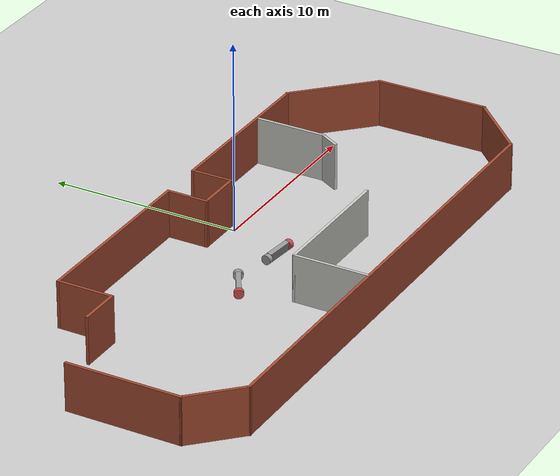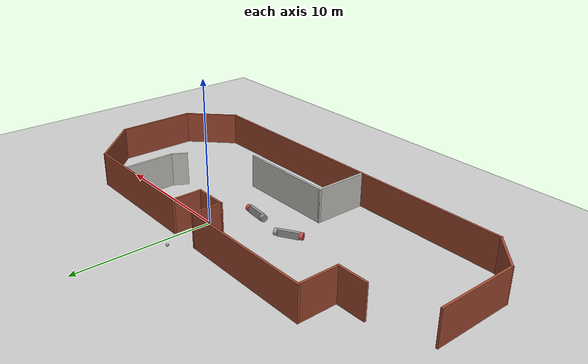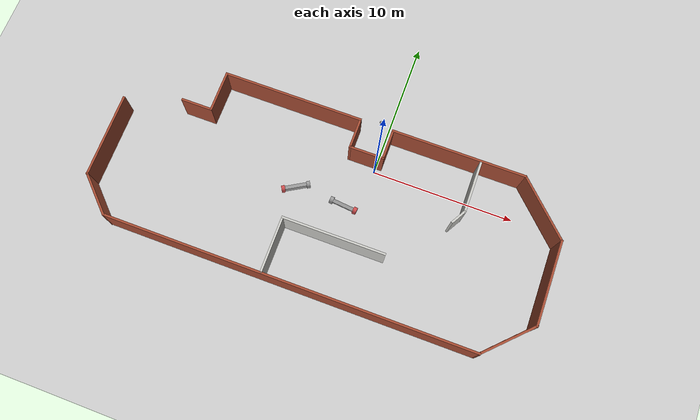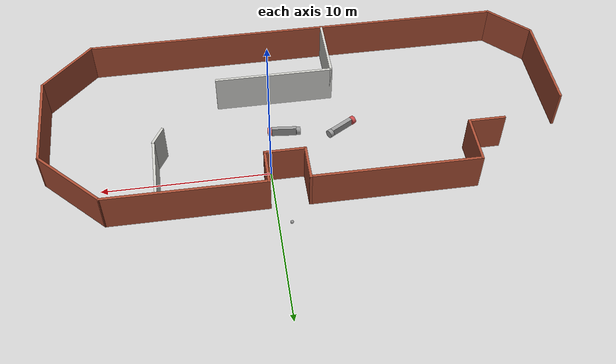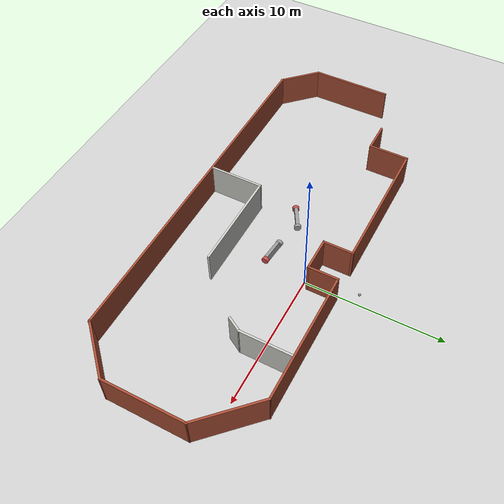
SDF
<sdf version="1.6">
 <world name="default">
  <plugin name="hello" filename="libhello.so"/>
  <light name="sun" type="directional">
   <pose>0 0 10 0 -0 0</pose>
   <diffuse>0.8 0.8 0.8 1</diffuse>
   <specular>0.2 0.2 0.2 1</specular>
   <attenuation>
    <range>1000</range>
    <constant>0.9</constant>
    <linear>0.01</linear>
    <quadratic>0.001</quadratic>
   </attenuation>
   <direction>-0.5 0.1 -0.9</direction>
  </light>
  <model name="ground_plane">
   <static>1</static>
   <link name="link">
    <collision name="collision">
     <geometry><plane><normal>0 0 1</normal><size>100 100</size></plane></geometry>
     <surface>
      <contact><collide_bitmask>65535</collide_bitmask></contact>
      <friction><ode><mu>100</mu><mu2>50</mu2></ode></friction>
     </surface>
    </collision>
    <visual name="visual">
     <cast_shadows>0</cast_shadows>
     <geometry><plane><normal>0 0 1</normal><size>100 100</size></plane></geometry>
     <material>
      <script><uri>file://media/materials/scripts/gazebo.material</uri><name>Gazebo/Grey</name></script>
     </material>
    </visual>
   </link>
  </model>
  <gravity>0 0 -9.8</gravity>
  <magnetic_field>6e-06 2.3e-05 -4.2e-05</magnetic_field>
  <atmosphere type="adiabatic"/>
  <physics name="default_physics" default="0" type="ode">
   <max_step_size>0.001</max_step_size>
   <real_time_factor>1</real_time_factor>
   <real_time_update_rate>1000</real_time_update_rate>
  </physics>
  <scene><ambient>0.4 0.4 0.4 1</ambient><background>0.7 0.7 0.7 1</background><shadows>1</shadows></scene>
  <spherical_coordinates>
   <surface_model>EARTH_WGS84</surface_model>
   <latitude_deg>0</latitude_deg>
   <longitude_deg>0</longitude_deg>
   <elevation>0</elevation>
   <heading_deg>0</heading_deg>
  </spherical_coordinates>
  <model name="robot">
   <link name="link_0">
    <pose>-3e-06 2e-06 0 0 -0 0</pose>
    <inertial>
     <mass>1</mass>
     <inertia>
      <ixx>0.166667</ixx>
      <ixy>0</ixy>
      <ixz>0</ixz>
      <iyy>0.166667</iyy>
      <iyz>0</iyz>
      <izz>0.166667</izz>
     </inertia>
    </inertial>
    <visual name="visual">
     <geometry><box><size>1.5 0.5 0.25</size></box></geometry>
     <material>
      <lighting>1</lighting>
      <script><uri>file://media/materials/scripts/gazebo.material</uri><name>Gazebo/Grey</name></script>
      <shader type="pixel"><normal_map>__default__</normal_map></shader>
      <ambient>0.3 0.3 0.3 1</ambient>
      <diffuse>0.7 0.7 0.7 1</diffuse>
      <specular>0.01 0.01 0.01 1</specular>
      <emissive>0 0 0 1</emissive>
     </material>
    </visual>
    <collision name="collision">
     <geometry><box><size>1.5 0.5 0.25</size></box></geometry>
     <surface>
      <friction>
       <ode><mu>1</mu><mu2>1</mu2><fdir1>0 0 0</fdir1><slip1>0</slip1><slip2>0</slip2></ode>
       <torsional>
        <coefficient>1</coefficient>
        <patch_radius>0</patch_radius>
        <surface_radius>0</surface_radius>
        <use_patch_radius>1</use_patch_radius>
        <ode><slip>0</slip></ode>
       </torsional>
      </friction>
      <bounce><restitution_coefficient>0</restitution_coefficient><threshold>1e+06</threshold></bounce>
      <contact>
       <collide_without_contact>0</collide_without_contact>
       <collide_without_contact_bitmask>1</collide_without_contact_bitmask>
       <collide_bitmask>1</collide_bitmask>
       <ode>
        <soft_cfm>0</soft_cfm>
        <soft_erp>0.2</soft_erp>
        <kp>1e+13</kp>
        <kd>1</kd>
        <max_vel>0.01</max_vel>
        <min_depth>0</min_depth>
       </ode>
       <bullet>
        <split_impulse>1</split_impulse>
        <split_impulse_penetration_threshold>-0.01</split_impulse_penetration_threshold>
        <soft_cfm>0</soft_cfm>
        <soft_erp>0.2</soft_erp>
        <kp>1e+13</kp>
        <kd>1</kd>
       </bullet>
      </contact>
     </surface>
    </collision>
   </link>
   <link name="link_1">
    <pose>0.87502 -0 0 0 1.57071 0</pose>
    <inertial>
     <mass>1</mass>
     <inertia><ixx>0.145833</ixx><ixy>0</ixy><ixz>0</ixz><iyy>0.145833</iyy><iyz>0</iyz><izz>0.125</izz></inertia>
    </inertial>
    <visual name="visual">
     <geometry><cylinder><radius>0.25</radius><length>0.25</length></cylinder></geometry>
     <material>
      <lighting>1</lighting>
      <script><uri>file://media/materials/scripts/gazebo.material</uri><name>Gazebo/Grey</name></script>
      <shader type="pixel"><normal_map>__default__</normal_map></shader>
      <ambient>0.8 0.3 0.3 1</ambient>
      <diffuse>0.7 0.7 0.7 1</diffuse>
      <specular>0.01 0.01 0.01 1</specular>
      <emissive>0 0 0 1</emissive>
     </material>
    </visual>
    <collision name="collision">
     <geometry><cylinder><radius>0.25</radius><length>0.25</length></cylinder></geometry>
     <surface>
      <friction>
       <ode><mu>1</mu><mu2>1</mu2><fdir1>0 0 0</fdir1><slip1>0</slip1><slip2>0</slip2></ode>
       <torsional>
        <coefficient>1</coefficient>
        <patch_radius>0</patch_radius>
        <surface_radius>0</surface_radius>
        <use_patch_radius>1</use_patch_radius>
        <ode><slip>0</slip></ode>
       </torsional>
      </friction>
      <bounce><restitution_coefficient>0</restitution_coefficient><threshold>1e+06</threshold></bounce>
      <contact>
       <collide_without_contact>0</collide_without_contact>
       <collide_without_contact_bitmask>1</collide_without_contact_bitmask>
       <collide_bitmask>1</collide_bitmask>
       <ode>
        <soft_cfm>0</soft_cfm>
        <soft_erp>0.2</soft_erp>
        <kp>1e+13</kp>
        <kd>1</kd>
        <max_vel>0.01</max_vel>
        <min_depth>0</min_depth>
       </ode>
       <bullet>
        <split_impulse>1</split_impulse>
        <split_impulse_penetration_threshold>-0.01</split_impulse_penetration_threshold>
        <soft_cfm>0</soft_cfm>
        <soft_erp>0.2</soft_erp>
        <kp>1e+13</kp>
        <kd>1</kd>
       </bullet>
      </contact>
     </surface>
    </collision>
   </link>
   <link name="link_1_clone">
    <pose>-0.875025 2e-06 0 0 1.57071 0</pose>
    <inertial>
     <mass>1</mass>
     <inertia><ixx>0.145833</ixx><ixy>0</ixy><ixz>0</ixz><iyy>0.145833</iyy><iyz>0</iyz><izz>0.125</izz></inertia>
    </inertial>
    <visual name="visual">
     <geometry><cylinder><radius>0.25</radius><length>0.25</length></cylinder></geometry>
     <material>
      <lighting>1</lighting>
      <script><uri>file://media/materials/scripts/gazebo.material</uri><name>Gazebo/Grey</name></script>
      <shader type="pixel"><normal_map>__default__</normal_map></shader>
      <ambient>0.3 0.3 0.3 1</ambient>
      <diffuse>0.7 0.7 0.7 1</diffuse>
      <specular>0.01 0.01 0.01 1</specular>
      <emissive>0 0 0 1</emissive>
     </material>
    </visual>
    <collision name="collision">
     <geometry><cylinder><radius>0.25</radius><length>0.25</length></cylinder></geometry>
     <surface>
      <friction>
       <ode><mu>1</mu><mu2>1</mu2><fdir1>0 0 0</fdir1><slip1>0</slip1><slip2>0</slip2></ode>
       <torsional>
        <coefficient>1</coefficient>
        <patch_radius>0</patch_radius>
        <surface_radius>0</surface_radius>
        <use_patch_radius>1</use_patch_radius>
        <ode><slip>0</slip></ode>
       </torsional>
      </friction>
      <bounce><restitution_coefficient>0</restitution_coefficient><threshold>1e+06</threshold></bounce>
      <contact>
       <collide_without_contact>0</collide_without_contact>
       <collide_without_contact_bitmask>1</collide_without_contact_bitmask>
       <collide_bitmask>1</collide_bitmask>
       <ode>
        <soft_cfm>0</soft_cfm>
        <soft_erp>0.2</soft_erp>
        <kp>1e+13</kp>
        <kd>1</kd>
        <max_vel>0.01</max_vel>
        <min_depth>0</min_depth>
       </ode>
       <bullet>
        <split_impulse>1</split_impulse>
        <split_impulse_penetration_threshold>-0.01</split_impulse_penetration_threshold>
        <soft_cfm>0</soft_cfm>
        <soft_erp>0.2</soft_erp>
        <kp>1e+13</kp>
        <kd>1</kd>
       </bullet>
      </contact>
     </surface>
    </collision>
   </link>
   <joint name="link_0_JOINT_2" type="revolute">
    <parent>link_0</parent>
    <child>link_1</child>
    <axis>
     <xyz>0 0 1</xyz>
     <use_parent_model_frame>0</use_parent_model_frame>
     <limit>
      <lower>-1.79769e+308</lower>
      <upper>1.79769e+308</upper>
      <effort>-1</effort>
      <velocity>-1</velocity>
     </limit>
     <dynamics>
      <spring_reference>0</spring_reference>
      <spring_stiffness>0</spring_stiffness>
      <damping>0</damping>
     </dynamics>
    </axis>
    <physics>
     <ode><limit><cfm>0</cfm><erp>0.2</erp></limit><suspension><cfm>0</cfm><erp>0.2</erp></suspension></ode>
    </physics>
   </joint>
   <joint name="link_0_JOINT_3" type="revolute">
    <parent>link_0</parent>
    <child>link_1_clone</child>
    <axis>
     <xyz>0 0 1</xyz>
     <use_parent_model_frame>0</use_parent_model_frame>
     <limit>
      <lower>-1.79769e+308</lower>
      <upper>1.79769e+308</upper>
      <effort>-1</effort>
      <velocity>-1</velocity>
     </limit>
     <dynamics>
      <spring_reference>0</spring_reference>
      <spring_stiffness>0</spring_stiffness>
      <damping>0</damping>
     </dynamics>
    </axis>
    <physics>
     <ode><limit><cfm>0</cfm><erp>0.2</erp></limit><suspension><cfm>0</cfm><erp>0.2</erp></suspension></ode>
    </physics>
   </joint>
   <static>0</static>
   <pose>-4.7199 -2.92587 0.249999 1.57079 -1e-06 -2.60647</pose>
  </model>
  <model name="robot_0">
   <link name="link_0">
    <pose>-3e-06 2e-06 0 0 -0 0</pose>
    <inertial>
     <mass>1</mass>
     <inertia>
      <ixx>0.166667</ixx>
      <ixy>0</ixy>
      <ixz>0</ixz>
      <iyy>0.166667</iyy>
      <iyz>0</iyz>
      <izz>0.166667</izz>
     </inertia>
    </inertial>
    <visual name="visual">
     <geometry><box><size>1.5 0.5 0.25</size></box></geometry>
     <material>
      <lighting>1</lighting>
      <script><uri>file://media/materials/scripts/gazebo.material</uri><name>Gazebo/Grey</name></script>
      <shader type="pixel"><normal_map>__default__</normal_map></shader>
      <ambient>0.3 0.3 0.3 1</ambient>
      <diffuse>0.7 0.7 0.7 1</diffuse>
      <specular>0.01 0.01 0.01 1</specular>
      <emissive>0 0 0 1</emissive>
     </material>
    </visual>
    <collision name="collision">
     <geometry><box><size>1.5 0.5 0.25</size></box></geometry>
     <surface>
      <friction>
       <ode><mu>1</mu><mu2>1</mu2><fdir1>0 0 0</fdir1><slip1>0</slip1><slip2>0</slip2></ode>
       <torsional>
        <coefficient>1</coefficient>
        <patch_radius>0</patch_radius>
        <surface_radius>0</surface_radius>
        <use_patch_radius>1</use_patch_radius>
        <ode><slip>0</slip></ode>
       </torsional>
      </friction>
      <bounce><restitution_coefficient>0</restitution_coefficient><threshold>1e+06</threshold></bounce>
      <contact>
       <collide_without_contact>0</collide_without_contact>
       <collide_without_contact_bitmask>1</collide_without_contact_bitmask>
       <collide_bitmask>1</collide_bitmask>
       <ode>
        <soft_cfm>0</soft_cfm>
        <soft_erp>0.2</soft_erp>
        <kp>1e+13</kp>
        <kd>1</kd>
        <max_vel>0.01</max_vel>
        <min_depth>0</min_depth>
       </ode>
       <bullet>
        <split_impulse>1</split_impulse>
        <split_impulse_penetration_threshold>-0.01</split_impulse_penetration_threshold>
        <soft_cfm>0</soft_cfm>
        <soft_erp>0.2</soft_erp>
        <kp>1e+13</kp>
        <kd>1</kd>
       </bullet>
      </contact>
     </surface>
    </collision>
   </link>
   <link name="link_1">
    <pose>0.87502 -0 0 0 1.57071 0</pose>
    <inertial>
     <mass>1</mass>
     <inertia><ixx>0.145833</ixx><ixy>0</ixy><ixz>0</ixz><iyy>0.145833</iyy><iyz>0</iyz><izz>0.125</izz></inertia>
    </inertial>
    <visual name="visual">
     <geometry><cylinder><radius>0.25</radius><length>0.25</length></cylinder></geometry>
     <material>
      <lighting>1</lighting>
      <script><uri>file://media/materials/scripts/gazebo.material</uri><name>Gazebo/Grey</name></script>
      <shader type="pixel"><normal_map>__default__</normal_map></shader>
      <ambient>0.8 0.3 0.3 1</ambient>
      <diffuse>0.7 0.7 0.7 1</diffuse>
      <specular>0.01 0.01 0.01 1</specular>
      <emissive>0 0 0 1</emissive>
     </material>
    </visual>
    <collision name="collision">
     <geometry><cylinder><radius>0.25</radius><length>0.25</length></cylinder></geometry>
     <surface>
      <friction>
       <ode><mu>1</mu><mu2>1</mu2><fdir1>0 0 0</fdir1><slip1>0</slip1><slip2>0</slip2></ode>
       <torsional>
        <coefficient>1</coefficient>
        <patch_radius>0</patch_radius>
        <surface_radius>0</surface_radius>
        <use_patch_radius>1</use_patch_radius>
        <ode><slip>0</slip></ode>
       </torsional>
      </friction>
      <bounce><restitution_coefficient>0</restitution_coefficient><threshold>1e+06</threshold></bounce>
      <contact>
       <collide_without_contact>0</collide_without_contact>
       <collide_without_contact_bitmask>1</collide_without_contact_bitmask>
       <collide_bitmask>1</collide_bitmask>
       <ode>
        <soft_cfm>0</soft_cfm>
        <soft_erp>0.2</soft_erp>
        <kp>1e+13</kp>
        <kd>1</kd>
        <max_vel>0.01</max_vel>
        <min_depth>0</min_depth>
       </ode>
       <bullet>
        <split_impulse>1</split_impulse>
        <split_impulse_penetration_threshold>-0.01</split_impulse_penetration_threshold>
        <soft_cfm>0</soft_cfm>
        <soft_erp>0.2</soft_erp>
        <kp>1e+13</kp>
        <kd>1</kd>
       </bullet>
      </contact>
     </surface>
    </collision>
   </link>
   <link name="link_1_clone">
    <pose>-0.875025 2e-06 0 0 1.57071 0</pose>
    <inertial>
     <mass>1</mass>
     <inertia><ixx>0.145833</ixx><ixy>0</ixy><ixz>0</ixz><iyy>0.145833</iyy><iyz>0</iyz><izz>0.125</izz></inertia>
    </inertial>
    <visual name="visual">
     <geometry><cylinder><radius>0.25</radius><length>0.25</length></cylinder></geometry>
     <material>
      <lighting>1</lighting>
      <script><uri>file://media/materials/scripts/gazebo.material</uri><name>Gazebo/Grey</name></script>
      <shader type="pixel"><normal_map>__default__</normal_map></shader>
      <ambient>0.3 0.3 0.3 1</ambient>
      <diffuse>0.7 0.7 0.7 1</diffuse>
      <specular>0.01 0.01 0.01 1</specular>
      <emissive>0 0 0 1</emissive>
     </material>
    </visual>
    <collision name="collision">
     <geometry><cylinder><radius>0.25</radius><length>0.25</length></cylinder></geometry>
     <surface>
      <friction>
       <ode><mu>1</mu><mu2>1</mu2><fdir1>0 0 0</fdir1><slip1>0</slip1><slip2>0</slip2></ode>
       <torsional>
        <coefficient>1</coefficient>
        <patch_radius>0</patch_radius>
        <surface_radius>0</surface_radius>
        <use_patch_radius>1</use_patch_radius>
        <ode><slip>0</slip></ode>
       </torsional>
      </friction>
      <bounce><restitution_coefficient>0</restitution_coefficient><threshold>1e+06</threshold></bounce>
      <contact>
       <collide_without_contact>0</collide_without_contact>
       <collide_without_contact_bitmask>1</collide_without_contact_bitmask>
       <collide_bitmask>1</collide_bitmask>
       <ode>
        <soft_cfm>0</soft_cfm>
        <soft_erp>0.2</soft_erp>
        <kp>1e+13</kp>
        <kd>1</kd>
        <max_vel>0.01</max_vel>
        <min_depth>0</min_depth>
       </ode>
       <bullet>
        <split_impulse>1</split_impulse>
        <split_impulse_penetration_threshold>-0.01</split_impulse_penetration_threshold>
        <soft_cfm>0</soft_cfm>
        <soft_erp>0.2</soft_erp>
        <kp>1e+13</kp>
        <kd>1</kd>
       </bullet>
      </contact>
     </surface>
    </collision>
   </link>
   <joint name="link_0_JOINT_2" type="revolute">
    <parent>link_0</parent>
    <child>link_1</child>
    <axis>
     <xyz>0 0 1</xyz>
     <use_parent_model_frame>0</use_parent_model_frame>
     <limit>
      <lower>-1.79769e+308</lower>
      <upper>1.79769e+308</upper>
      <effort>-1</effort>
      <velocity>-1</velocity>
     </limit>
     <dynamics>
      <spring_reference>0</spring_reference>
      <spring_stiffness>0</spring_stiffness>
      <damping>0</damping>
     </dynamics>
    </axis>
    <physics>
     <ode><limit><cfm>0</cfm><erp>0.2</erp></limit><suspension><cfm>0</cfm><erp>0.2</erp></suspension></ode>
    </physics>
   </joint>
   <joint name="link_0_JOINT_3" type="revolute">
    <parent>link_0</parent>
    <child>link_1_clone</child>
    <axis>
     <xyz>0 0 1</xyz>
     <use_parent_model_frame>0</use_parent_model_frame>
     <limit>
      <lower>-1.79769e+308</lower>
      <upper>1.79769e+308</upper>
      <effort>-1</effort>
      <velocity>-1</velocity>
     </limit>
     <dynamics>
      <spring_reference>0</spring_reference>
      <spring_stiffness>0</spring_stiffness>
      <damping>0</damping>
     </dynamics>
    </axis>
    <physics>
     <ode><limit><cfm>0</cfm><erp>0.2</erp></limit><suspension><cfm>0</cfm><erp>0.2</erp></suspension></ode>
    </physics>
   </joint>
   <static>0</static>
   <pose>-1.1766 -3.04545 0.267188 -1.40517 2e-06 -0.093972</pose>
  </model>
  <model name="building_0">
   <pose>-2.32803 -3.60871 0 0 -0 0</pose>
   <link name="Wall_10">
    <collision name="Wall_10_Collision">
     <geometry><box><size>9.5 0.15 2.5</size></box></geometry>
     <pose>0 0 1.25 0 -0 0</pose>
    </collision>
    <visual name="Wall_10_Visual">
     <pose>0 0 1.25 0 -0 0</pose>
     <geometry><box><size>9.5 0.15 2.5</size></box></geometry>
     <material>
      <script><uri>file://media/materials/scripts/gazebo.material</uri><name>Gazebo/Bricks</name></script>
      <ambient>0.996078 0.47451 0.0196078 1</ambient>
     </material>
     <meta><layer>0</layer></meta>
    </visual>
    <pose>7.36612 6.0893 0 0 -0 3.14159</pose>
   </link>
   <link name="Wall_11">
    <collision name="Wall_11_Collision">
     <geometry><box><size>2.25 0.15 2.5</size></box></geometry>
     <pose>0 0 1.25 0 -0 0</pose>
    </collision>
    <visual name="Wall_11_Visual">
     <pose>0 0 1.25 0 -0 0</pose>
     <geometry><box><size>2.25 0.15 2.5</size></box></geometry>
     <material>
      <script><uri>file://media/materials/scripts/gazebo.material</uri><name>Gazebo/Bricks</name></script>
      <ambient>0.996078 0.47451 0.0196078 1</ambient>
     </material>
     <meta><layer>0</layer></meta>
    </visual>
    <pose>2.69112 5.0393 0 0 0 -1.5708</pose>
   </link>
   <link name="Wall_12">
    <collision name="Wall_12_Collision">
     <geometry><box><size>2.5 0.15 2.5</size></box></geometry>
     <pose>0 0 1.25 0 -0 0</pose>
    </collision>
    <visual name="Wall_12_Visual">
     <pose>0 0 1.25 0 -0 0</pose>
     <geometry><box><size>2.5 0.15 2.5</size></box></geometry>
     <material>
      <script><uri>file://media/materials/scripts/gazebo.material</uri><name>Gazebo/Bricks</name></script>
      <ambient>0.996078 0.47451 0.0196078 1</ambient>
     </material>
     <meta><layer>0</layer></meta>
    </visual>
    <pose>1.51612 3.9893 0 0 -0 3.14159</pose>
   </link>
   <link name="Wall_13">
    <collision name="Wall_13_Collision">
     <geometry><box><size>2.25 0.15 2.5</size></box></geometry>
     <pose>0 0 1.25 0 -0 0</pose>
    </collision>
    <visual name="Wall_13_Visual">
     <pose>0 0 1.25 0 -0 0</pose>
     <geometry><box><size>2.25 0.15 2.5</size></box></geometry>
     <material>
      <script><uri>file://media/materials/scripts/gazebo.material</uri><name>Gazebo/Bricks</name></script>
      <ambient>1 1 1 1</ambient>
     </material>
     <meta><layer>0</layer></meta>
    </visual>
    <pose>0.341116 5.0393 0 0 -0 1.5708</pose>
   </link>
   <link name="Wall_14">
    <collision name="Wall_14_Collision">
     <geometry><box><size>10 0.15 2.5</size></box></geometry>
     <pose>0 0 1.25 0 -0 0</pose>
    </collision>
    <visual name="Wall_14_Visual">
     <pose>0 0 1.25 0 -0 0</pose>
     <geometry><box><size>10 0.15 2.5</size></box></geometry>
     <material>
      <script><uri>file://media/materials/scripts/gazebo.material</uri><name>Gazebo/Bricks</name></script>
      <ambient>0.996078 0.47451 0.0196078 1</ambient>
     </material>
     <meta><layer>0</layer></meta>
    </visual>
    <pose>-4.58388 6.0893 0 0 -0 3.14159</pose>
   </link>
   <link name="Wall_15">
    <collision name="Wall_15_Collision">
     <geometry><box><size>3 0.15 2.5</size></box></geometry>
     <pose>0 0 1.25 0 -0 0</pose>
    </collision>
    <visual name="Wall_15_Visual">
     <pose>0 0 1.25 0 -0 0</pose>
     <geometry><box><size>3 0.15 2.5</size></box></geometry>
     <material>
      <script><uri>file://media/materials/scripts/gazebo.material</uri><name>Gazebo/Bricks</name></script>
      <ambient>0.996078 0.47451 0.0196078 1</ambient>
     </material>
     <meta><layer>0</layer></meta>
    </visual>
    <pose>-9.50888 4.6643 0 0 0 -1.5708</pose>
   </link>
   <link name="Wall_16">
    <collision name="Wall_16_Collision">
     <geometry><box><size>2.25 0.15 2.5</size></box></geometry>
     <pose>0 0 1.25 0 -0 0</pose>
    </collision>
    <visual name="Wall_16_Visual">
     <pose>0 0 1.25 0 -0 0</pose>
     <geometry><box><size>2.25 0.15 2.5</size></box></geometry>
     <material>
      <script><uri>file://media/materials/scripts/gazebo.material</uri><name>Gazebo/Bricks</name></script>
      <ambient>0.996078 0.47451 0.0196078 1</ambient>
     </material>
     <meta><layer>0</layer></meta>
    </visual>
    <pose>-10.5589 3.2393 0 0 -0 3.14159</pose>
   </link>
   <link name="Wall_18">
    <collision name="Wall_18_Collision">
     <geometry><box><size>4 0.15 2.5</size></box></geometry>
     <pose>0 0 1.25 0 -0 0</pose>
    </collision>
    <visual name="Wall_18_Visual">
     <pose>0 0 1.25 0 -0 0</pose>
     <geometry><box><size>4 0.15 2.5</size></box></geometry>
     <material>
      <script><uri>file://media/materials/scripts/gazebo.material</uri><name>Gazebo/CeilingTiled</name></script>
      <ambient>0.435294 0.796078 0.67451 1</ambient>
     </material>
     <meta><layer>0</layer></meta>
    </visual>
    <pose>-2.15358 -4.09177 0 0 -0 1.5708</pose>
   </link>
   <link name="Wall_19">
    <collision name="Wall_19_Collision">
     <geometry><box><size>7.25 0.15 2.5</size></box></geometry>
     <pose>0 0 1.25 0 -0 0</pose>
    </collision>
    <visual name="Wall_19_Visual">
     <pose>0 0 1.25 0 -0 0</pose>
     <geometry><box><size>7.25 0.15 2.5</size></box></geometry>
     <material>
      <script><uri>file://media/materials/scripts/gazebo.material</uri><name>Gazebo/CeilingTiled</name></script>
      <ambient>0.435294 0.796078 0.67451 1</ambient>
     </material>
     <meta><layer>0</layer></meta>
    </visual>
    <pose>1.39641 -2.16677 0 0 -0 0</pose>
   </link>
   <link name="Wall_21">
    <collision name="Wall_21_Collision">
     <geometry><box><size>3.75 0.15 2.5</size></box></geometry>
     <pose>0 0 1.25 0 -0 0</pose>
    </collision>
    <visual name="Wall_21_Visual">
     <pose>0 0 1.25 0 -0 0</pose>
     <geometry><box><size>3.75 0.15 2.5</size></box></geometry>
     <material>
      <script><uri>file://media/materials/scripts/gazebo.material</uri><name>Gazebo/CeilingTiled</name></script>
      <ambient>0.435294 0.796078 0.67451 1</ambient>
     </material>
     <meta><layer>0</layer></meta>
    </visual>
    <pose>8.95542 4.15473 0 0 0 -1.5708</pose>
   </link>
   <link name="Wall_22">
    <collision name="Wall_22_Collision">
     <geometry><box><size>1.25 0.15 2.5</size></box></geometry>
     <pose>0 0 1.25 0 -0 0</pose>
    </collision>
    <visual name="Wall_22_Visual">
     <pose>0 0 1.25 0 -0 0</pose>
     <geometry><box><size>1.25 0.15 2.5</size></box></geometry>
     <material>
      <script><uri>file://media/materials/scripts/gazebo.material</uri><name>Gazebo/CeilingTiled</name></script>
      <ambient>0.435294 0.796078 0.67451 1</ambient>
     </material>
     <meta><layer>0</layer></meta>
    </visual>
    <pose>8.68041 1.87841 0 0 0 -2.0944</pose>
   </link>
   <link name="Wall_4">
    <collision name="Wall_4_Collision">
     <geometry><box><size>6 0.15 2.5</size></box></geometry>
     <pose>0 0 1.25 0 -0 0</pose>
    </collision>
    <visual name="Wall_4_Visual">
     <pose>0 0 1.25 0 -0 0</pose>
     <geometry><box><size>6 0.15 2.5</size></box></geometry>
     <material>
      <script><uri>file://media/materials/scripts/gazebo.material</uri><name>Gazebo/Bricks</name></script>
      <ambient>0.996078 0.47451 0.0196078 1</ambient>
     </material>
     <meta><layer>0</layer></meta>
    </visual>
    <pose>-15.4706 -0.972272 0 0 0 -1.5708</pose>
   </link>
   <link name="Wall_5">
    <collision name="Wall_5_Collision">
     <geometry><box><size>3.25 0.15 2.5</size></box></geometry>
     <pose>0 0 1.25 0 -0 0</pose>
    </collision>
    <visual name="Wall_5_Visual">
     <pose>0 0 1.25 0 -0 0</pose>
     <geometry><box><size>3.25 0.15 2.5</size></box></geometry>
     <material>
      <script><uri>file://media/materials/scripts/gazebo.material</uri><name>Gazebo/Bricks</name></script>
      <ambient>0.996078 0.47451 0.0196078 1</ambient>
     </material>
     <meta><layer>0</layer></meta>
    </visual>
    <pose>-14.3746 -4.99329 0 0 0 -0.785398</pose>
   </link>
   <link name="Wall_6">
    <collision name="Wall_6_Collision">
     <geometry><box><size>26 0.15 2.5</size></box></geometry>
     <pose>0 0 1.25 0 -0 0</pose>
    </collision>
    <visual name="Wall_6_Visual">
     <pose>0 0 1.25 0 -0 0</pose>
     <geometry><box><size>26 0.15 2.5</size></box></geometry>
     <material>
      <script><uri>file://media/materials/scripts/gazebo.material</uri><name>Gazebo/Bricks</name></script>
      <ambient>0.996078 0.47451 0.0196078 1</ambient>
     </material>
     <meta><layer>0</layer></meta>
    </visual>
    <pose>-0.353554 -6.0893 0 0 -0 0</pose>
   </link>
   <link name="Wall_7">
    <collision name="Wall_7_Collision">
     <geometry><box><size>4.25 0.15 2.5</size></box></geometry>
     <pose>0 0 1.25 0 -0 0</pose>
    </collision>
    <visual name="Wall_7_Visual">
     <pose>0 0 1.25 0 -0 0</pose>
     <geometry><box><size>4.25 0.15 2.5</size></box></geometry>
     <material>
      <script><uri>file://media/materials/scripts/gazebo.material</uri><name>Gazebo/Bricks</name></script>
      <ambient>0.996078 0.47451 0.0196078 1</ambient>
     </material>
     <meta><layer>0</layer></meta>
    </visual>
    <pose>14.021 -4.63973 0 0 -0 0.785398</pose>
   </link>
   <link name="Wall_8">
    <collision name="Wall_8_Collision">
     <geometry><box><size>6 0.15 2.5</size></box></geometry>
     <pose>0 0 1.25 0 -0 0</pose>
    </collision>
    <visual name="Wall_8_Visual">
     <pose>0 0 1.25 0 -0 0</pose>
     <geometry><box><size>6 0.15 2.5</size></box></geometry>
     <material>
      <script><uri>file://media/materials/scripts/gazebo.material</uri><name>Gazebo/Bricks</name></script>
      <ambient>0.996078 0.47451 0.0196078 1</ambient>
     </material>
     <meta><layer>0</layer></meta>
    </visual>
    <pose>15.4706 -0.265165 0 0 -0 1.5708</pose>
   </link>
   <link name="Wall_9">
    <collision name="Wall_9_Collision">
     <geometry><box><size>5 0.15 2.5</size></box></geometry>
     <pose>0 0 1.25 0 -0 0</pose>
    </collision>
    <visual name="Wall_9_Visual">
     <pose>0 0 1.25 0 -0 0</pose>
     <geometry><box><size>5 0.15 2.5</size></box></geometry>
     <material>
      <script><uri>file://media/materials/scripts/gazebo.material</uri><name>Gazebo/Bricks</name></script>
      <ambient>0.996078 0.47451 0.0196078 1</ambient>
     </material>
     <meta><layer>0</layer></meta>
    </visual>
    <pose>13.7559 4.37457 0 0 -0 2.35619</pose>
   </link>
   <static>1</static>
  </model>
  <model name="my_ball">
   <link name="link_0">
    <inertial>
     <mass>1</mass>
     <inertia><ixx>0.1</ixx><ixy>0</ixy><ixz>0</ixz><iyy>0.1</iyy><iyz>0</iyz><izz>0.1</izz></inertia>
    </inertial>
    <visual name="visual">
     <geometry><sphere><radius>0.1</radius></sphere></geometry>
     <material>
      <lighting>1</lighting>
      <script><uri>file://media/materials/scripts/gazebo.material</uri><name>Gazebo/Grey</name></script>
      <shader type="pixel"><normal_map>__default__</normal_map></shader>
      <ambient>1 1 1 1</ambient>
      <diffuse>1 1 1 1</diffuse>
      <specular>1 1 1 1</specular>
      <emissive>1 1 1 1</emissive>
     </material>
    </visual>
    <collision name="collision">
     <geometry><sphere><radius>0.1</radius></sphere></geometry>
     <surface>
      <friction>
       <ode><mu>1</mu><mu2>1</mu2><fdir1>0 0 0</fdir1><slip1>0</slip1><slip2>0</slip2></ode>
       <torsional>
        <coefficient>1</coefficient>
        <patch_radius>0</patch_radius>
        <surface_radius>0</surface_radius>
        <use_patch_radius>1</use_patch_radius>
        <ode><slip>0</slip></ode>
       </torsional>
      </friction>
      <bounce><restitution_coefficient>0</restitution_coefficient><threshold>1e+06</threshold></bounce>
      <contact>
       <collide_without_contact>0</collide_without_contact>
       <collide_without_contact_bitmask>1</collide_without_contact_bitmask>
       <collide_bitmask>1</collide_bitmask>
       <ode>
        <soft_cfm>0</soft_cfm>
        <soft_erp>0.2</soft_erp>
        <kp>1e+13</kp>
        <kd>1</kd>
        <max_vel>0.01</max_vel>
        <min_depth>0</min_depth>
       </ode>
       <bullet>
        <split_impulse>1</split_impulse>
        <split_impulse_penetration_threshold>-0.01</split_impulse_penetration_threshold>
        <soft_cfm>0</soft_cfm>
        <soft_erp>0.2</soft_erp>
        <kp>1e+13</kp>
        <kd>1</kd>
       </bullet>
      </contact>
     </surface>
    </collision>
   </link>
   <static>0</static>
   <pose>-0.74831 3.72624 0.1 0 -0 0</pose>
  </model>
 </world>
</sdf>
